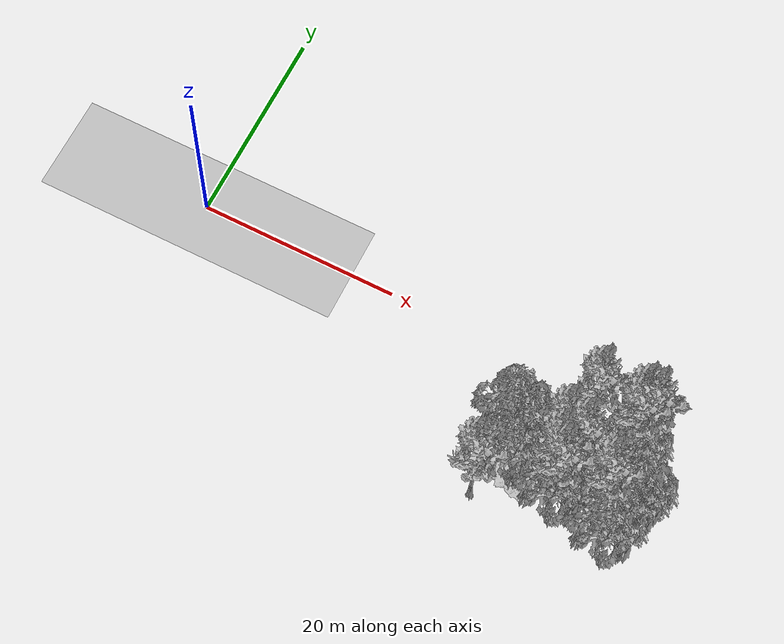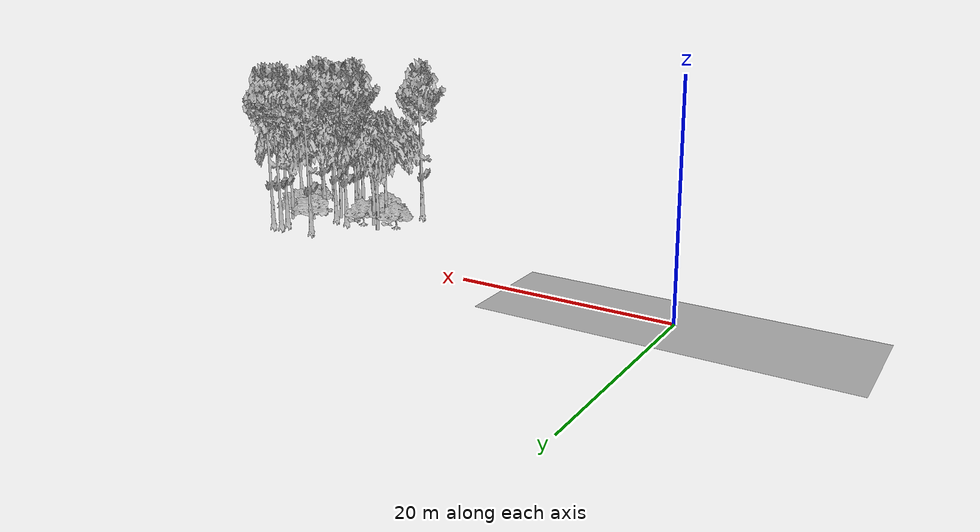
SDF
<sdf version="1.7">
 <world name="default">
  <model name="ground_plane">
   <static>1</static>
   <link name="link">
    <collision name="collision">
     <pose>-50 0 0 0 -0 0</pose>
     <geometry><plane><normal>0 0 1</normal><size>100 100</size></plane></geometry>
     <surface><contact><ode><min_depth>0.01</min_depth><max_vel>0</max_vel></ode></contact></surface>
    </collision>
    <visual name="grass">
     <cast_shadows>0</cast_shadows>
     <geometry>
      <mesh>
       <scale>0.5814285714285714 0.18142857142857144 0.1</scale>
       <uri>file://grass_plane/meshes/grass_plane.dae</uri>
      </mesh>
     </geometry>
    </visual>
   </link>
  </model>
  <model name="Tree 3">
   <static>1</static>
   <pose>48.38571154356791 -9.816409687818725 0 1.57079 -0 0</pose>
   <link name="link">
    <collision name="collision">
     <geometry><mesh><scale>3.5 5 3.5</scale><uri>model://tree_2/meshes/tree_2.obj</uri></mesh></geometry>
    </collision>
    <visual name="visual">
     <geometry><mesh><scale>3.5 5 3.5</scale><uri>model://tree_2/meshes/tree_2.obj</uri></mesh></geometry>
    </visual>
   </link>
  </model>
  <model name="Tree 5">
   <static>1</static>
   <pose>34.673086230254086 -9.217702355086361 0 1.57079 -0 0</pose>
   <link name="link">
    <collision name="collision">
     <geometry><mesh><scale>4 2.5 4</scale><uri>model://tree_1/meshes/tree_1.obj</uri></mesh></geometry>
    </collision>
    <visual name="visual">
     <geometry><mesh><scale>4 2.5 4</scale><uri>model://tree_1/meshes/tree_1.obj</uri></mesh></geometry>
    </visual>
   </link>
  </model>
  <model name="Tree 12">
   <static>1</static>
   <pose>42.523572436256885 -8.748255863556011 0 1.57079 -0 0</pose>
   <link name="link">
    <collision name="collision">
     <geometry><mesh><scale>3.5 5 3.5</scale><uri>model://tree_9/meshes/tree_9.obj</uri></mesh></geometry>
    </collision>
    <visual name="visual">
     <geometry><mesh><scale>3.5 5 3.5</scale><uri>model://tree_9/meshes/tree_9.obj</uri></mesh></geometry>
    </visual>
   </link>
  </model>
  <model name="Tree 17">
   <static>1</static>
   <pose>38.49166975786936 -8.459165041315796 0 1.57079 -0 0</pose>
   <link name="link">
    <collision name="collision">
     <geometry><mesh><scale>4 2.5 4</scale><uri>model://tree_1/meshes/tree_1.obj</uri></mesh></geometry>
    </collision>
    <visual name="visual">
     <geometry><mesh><scale>4 2.5 4</scale><uri>model://tree_1/meshes/tree_1.obj</uri></mesh></geometry>
    </visual>
   </link>
  </model>
  <model name="Tree 19">
   <static>1</static>
   <pose>41.78508932308581 -11.674716123932214 0 1.57079 -0 0</pose>
   <link name="link">
    <collision name="collision">
     <geometry><mesh><scale>3.5 5 3.5</scale><uri>model://tree_9/meshes/tree_9.obj</uri></mesh></geometry>
    </collision>
    <visual name="visual">
     <geometry><mesh><scale>3.5 5 3.5</scale><uri>model://tree_9/meshes/tree_9.obj</uri></mesh></geometry>
    </visual>
   </link>
  </model>
  <model name="Tree 25">
   <static>1</static>
   <pose>47.33242879049929 -8.25013505071646 0 1.57079 -0 0</pose>
   <link name="link">
    <collision name="collision">
     <geometry><mesh><scale>3 2 3</scale><uri>model://tree_3/meshes/tree_3.obj</uri></mesh></geometry>
    </collision>
    <visual name="visual">
     <geometry><mesh><scale>3 2 3</scale><uri>model://tree_3/meshes/tree_3.obj</uri></mesh></geometry>
    </visual>
   </link>
  </model>
  <model name="Tree 46">
   <static>1</static>
   <pose>37.369344354972526 -8.925383615607366 0 1.57079 -0 0</pose>
   <link name="link">
    <collision name="collision">
     <geometry><mesh><scale>3.5 5 3.5</scale><uri>model://tree_2/meshes/tree_2.obj</uri></mesh></geometry>
    </collision>
    <visual name="visual">
     <geometry><mesh><scale>3.5 5 3.5</scale><uri>model://tree_2/meshes/tree_2.obj</uri></mesh></geometry>
    </visual>
   </link>
  </model>
  <model name="Tree 51">
   <static>1</static>
   <pose>41.852133391507934 -12.63090849099568 0 1.57079 -0 0</pose>
   <link name="link">
    <collision name="collision">
     <geometry><mesh><scale>3.5 5 3.5</scale><uri>model://tree_2/meshes/tree_2.obj</uri></mesh></geometry>
    </collision>
    <visual name="visual">
     <geometry><mesh><scale>3.5 5 3.5</scale><uri>model://tree_2/meshes/tree_2.obj</uri></mesh></geometry>
    </visual>
   </link>
  </model>
  <model name="Tree 53">
   <static>1</static>
   <pose>46.391112881722634 -6.22453930728957 0 1.57079 -0 0</pose>
   <link name="link">
    <collision name="collision">
     <geometry><mesh><scale>3.5 5 3.5</scale><uri>model://tree_2/meshes/tree_2.obj</uri></mesh></geometry>
    </collision>
    <visual name="visual">
     <geometry><mesh><scale>3.5 5 3.5</scale><uri>model://tree_2/meshes/tree_2.obj</uri></mesh></geometry>
    </visual>
   </link>
  </model>
  <model name="Tree 56">
   <static>1</static>
   <pose>45.953530249383064 -10.795730620826463 0 1.57079 -0 0</pose>
   <link name="link">
    <collision name="collision">
     <geometry><mesh><scale>3.5 5 3.5</scale><uri>model://tree_9/meshes/tree_9.obj</uri></mesh></geometry>
    </collision>
    <visual name="visual">
     <geometry><mesh><scale>3.5 5 3.5</scale><uri>model://tree_9/meshes/tree_9.obj</uri></mesh></geometry>
    </visual>
   </link>
  </model>
  <model name="Tree 63">
   <static>1</static>
   <pose>47.37374391984311 -14.005304853789438 0 1.57079 -0 0</pose>
   <link name="link">
    <collision name="collision">
     <geometry><mesh><scale>3.5 5 3.5</scale><uri>model://tree_2/meshes/tree_2.obj</uri></mesh></geometry>
    </collision>
    <visual name="visual">
     <geometry><mesh><scale>3.5 5 3.5</scale><uri>model://tree_2/meshes/tree_2.obj</uri></mesh></geometry>
    </visual>
   </link>
  </model>
  <model name="Tree 74">
   <static>1</static>
   <pose>48.097042973286506 -11.01146073400946 0 1.57079 -0 0</pose>
   <link name="link">
    <collision name="collision">
     <geometry><mesh><scale>3.5 5 3.5</scale><uri>model://tree_2/meshes/tree_2.obj</uri></mesh></geometry>
    </collision>
    <visual name="visual">
     <geometry><mesh><scale>3.5 5 3.5</scale><uri>model://tree_2/meshes/tree_2.obj</uri></mesh></geometry>
    </visual>
   </link>
  </model>
  <model name="Tree 94">
   <static>1</static>
   <pose>41.08088878584422 -10.512670908930701 0 1.57079 -0 0</pose>
   <link name="link">
    <collision name="collision">
     <geometry><mesh><scale>3.5 5 3.5</scale><uri>model://tree_9/meshes/tree_9.obj</uri></mesh></geometry>
    </collision>
    <visual name="visual">
     <geometry><mesh><scale>3.5 5 3.5</scale><uri>model://tree_9/meshes/tree_9.obj</uri></mesh></geometry>
    </visual>
   </link>
  </model>
  <model name="Tree 101">
   <static>1</static>
   <pose>47.448650698665574 -11.13952359008088 0 1.57079 -0 0</pose>
   <link name="link">
    <collision name="collision">
     <geometry><mesh><scale>4 2.5 4</scale><uri>model://tree_1/meshes/tree_1.obj</uri></mesh></geometry>
    </collision>
    <visual name="visual">
     <geometry><mesh><scale>4 2.5 4</scale><uri>model://tree_1/meshes/tree_1.obj</uri></mesh></geometry>
    </visual>
   </link>
  </model>
  <model name="Tree 121">
   <static>1</static>
   <pose>37.39258619920817 -11.056034440130336 0 1.57079 -0 0</pose>
   <link name="link">
    <collision name="collision">
     <geometry><mesh><scale>3.5 5 3.5</scale><uri>model://tree_2/meshes/tree_2.obj</uri></mesh></geometry>
    </collision>
    <visual name="visual">
     <geometry><mesh><scale>3.5 5 3.5</scale><uri>model://tree_2/meshes/tree_2.obj</uri></mesh></geometry>
    </visual>
   </link>
  </model>
  <model name="Tree 128">
   <static>1</static>
   <pose>46.76644450459909 -3.5491397650443233 0 1.57079 -0 0</pose>
   <link name="link">
    <collision name="collision">
     <geometry><mesh><scale>3.5 5 3.5</scale><uri>model://tree_9/meshes/tree_9.obj</uri></mesh></geometry>
    </collision>
    <visual name="visual">
     <geometry><mesh><scale>3.5 5 3.5</scale><uri>model://tree_9/meshes/tree_9.obj</uri></mesh></geometry>
    </visual>
   </link>
  </model>
  <model name="Tree 164">
   <static>1</static>
   <pose>35.88446220733118 -7.7358949408709705 0 1.57079 -0 0</pose>
   <link name="link">
    <collision name="collision">
     <geometry><mesh><scale>3.5 5 3.5</scale><uri>model://tree_2/meshes/tree_2.obj</uri></mesh></geometry>
    </collision>
    <visual name="visual">
     <geometry><mesh><scale>3.5 5 3.5</scale><uri>model://tree_2/meshes/tree_2.obj</uri></mesh></geometry>
    </visual>
   </link>
  </model>
  <model name="Tree 177">
   <static>1</static>
   <pose>38.13949970673559 -11.94457195605685 0 1.57079 -0 0</pose>
   <link name="link">
    <collision name="collision">
     <geometry><mesh><scale>3 2 3</scale><uri>model://tree_3/meshes/tree_3.obj</uri></mesh></geometry>
    </collision>
    <visual name="visual">
     <geometry><mesh><scale>3 2 3</scale><uri>model://tree_3/meshes/tree_3.obj</uri></mesh></geometry>
    </visual>
   </link>
  </model>
  <model name="Tree 211">
   <static>1</static>
   <pose>45.77406300178485 -3.6822033196306965 0 1.57079 -0 0</pose>
   <link name="link">
    <collision name="collision">
     <geometry><mesh><scale>3.5 5 3.5</scale><uri>model://tree_9/meshes/tree_9.obj</uri></mesh></geometry>
    </collision>
    <visual name="visual">
     <geometry><mesh><scale>3.5 5 3.5</scale><uri>model://tree_9/meshes/tree_9.obj</uri></mesh></geometry>
    </visual>
   </link>
  </model>
  <model name="Tree 216">
   <static>1</static>
   <pose>44.6096048353571 -7.466907892110085 0 1.57079 -0 0</pose>
   <link name="link">
    <collision name="collision">
     <geometry><mesh><scale>3 2 3</scale><uri>model://tree_3/meshes/tree_3.obj</uri></mesh></geometry>
    </collision>
    <visual name="visual">
     <geometry><mesh><scale>3 2 3</scale><uri>model://tree_3/meshes/tree_3.obj</uri></mesh></geometry>
    </visual>
   </link>
  </model>
  <model name="Tree 224">
   <static>1</static>
   <pose>45.78068710844275 -4.681365189234622 0 1.57079 -0 0</pose>
   <link name="link">
    <collision name="collision">
     <geometry><mesh><scale>3.5 5 3.5</scale><uri>model://tree_9/meshes/tree_9.obj</uri></mesh></geometry>
    </collision>
    <visual name="visual">
     <geometry><mesh><scale>3.5 5 3.5</scale><uri>model://tree_9/meshes/tree_9.obj</uri></mesh></geometry>
    </visual>
   </link>
  </model>
  <model name="Tree 240">
   <static>1</static>
   <pose>35.099456270443596 -14.466275658931178 0 1.57079 -0 0</pose>
   <link name="link">
    <collision name="collision">
     <geometry><mesh><scale>3.5 5 3.5</scale><uri>model://tree_9/meshes/tree_9.obj</uri></mesh></geometry>
    </collision>
    <visual name="visual">
     <geometry><mesh><scale>3.5 5 3.5</scale><uri>model://tree_9/meshes/tree_9.obj</uri></mesh></geometry>
    </visual>
   </link>
  </model>
  <model name="Tree 245">
   <static>1</static>
   <pose>42.13286445444527 -9.222400609201333 0 1.57079 -0 0</pose>
   <link name="link">
    <collision name="collision">
     <geometry><mesh><scale>3.5 5 3.5</scale><uri>model://tree_2/meshes/tree_2.obj</uri></mesh></geometry>
    </collision>
    <visual name="visual">
     <geometry><mesh><scale>3.5 5 3.5</scale><uri>model://tree_2/meshes/tree_2.obj</uri></mesh></geometry>
    </visual>
   </link>
  </model>
  <model name="Tree 256">
   <static>1</static>
   <pose>40.71881672129261 -8.343671786313644 0 1.57079 -0 0</pose>
   <link name="link">
    <collision name="collision">
     <geometry><mesh><scale>3.5 5 3.5</scale><uri>model://tree_9/meshes/tree_9.obj</uri></mesh></geometry>
    </collision>
    <visual name="visual">
     <geometry><mesh><scale>3.5 5 3.5</scale><uri>model://tree_9/meshes/tree_9.obj</uri></mesh></geometry>
    </visual>
   </link>
  </model>
  <model name="Tree 266">
   <static>1</static>
   <pose>46.161710221461405 -10.868764828805713 0 1.57079 -0 0</pose>
   <link name="link">
    <collision name="collision">
     <geometry><mesh><scale>3.5 5 3.5</scale><uri>model://tree_2/meshes/tree_2.obj</uri></mesh></geometry>
    </collision>
    <visual name="visual">
     <geometry><mesh><scale>3.5 5 3.5</scale><uri>model://tree_2/meshes/tree_2.obj</uri></mesh></geometry>
    </visual>
   </link>
  </model>
  <model name="Tree 277">
   <static>1</static>
   <pose>41.750585874915615 -3.8883838666157686 0 1.57079 -0 0</pose>
   <link name="link">
    <collision name="collision">
     <geometry><mesh><scale>3.5 5 3.5</scale><uri>model://tree_9/meshes/tree_9.obj</uri></mesh></geometry>
    </collision>
    <visual name="visual">
     <geometry><mesh><scale>3.5 5 3.5</scale><uri>model://tree_9/meshes/tree_9.obj</uri></mesh></geometry>
    </visual>
   </link>
  </model>
 </world>
</sdf>
